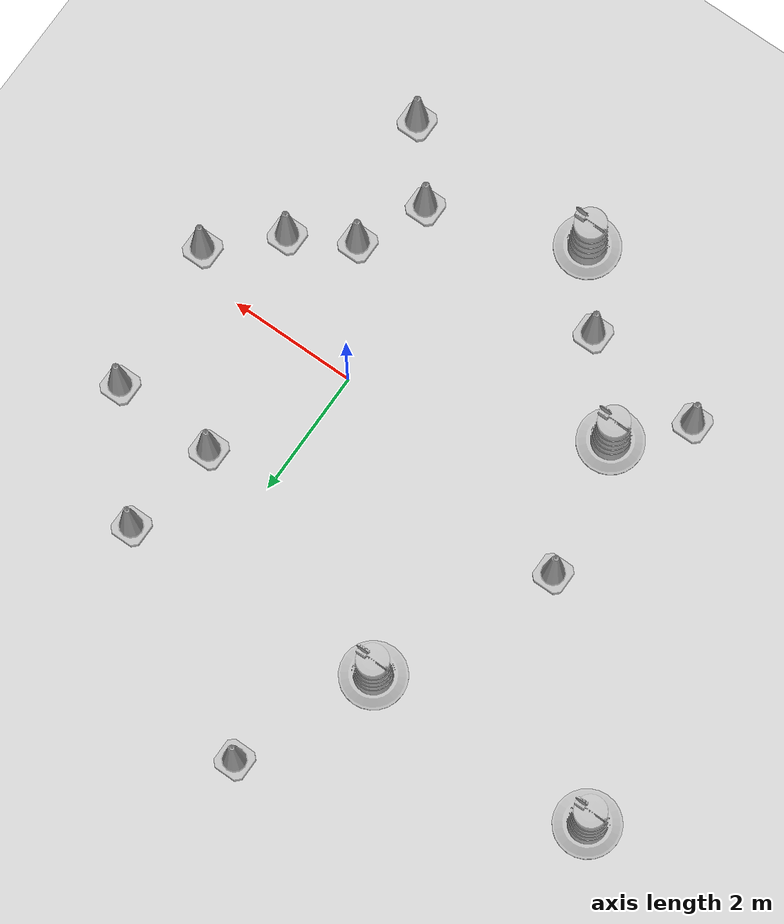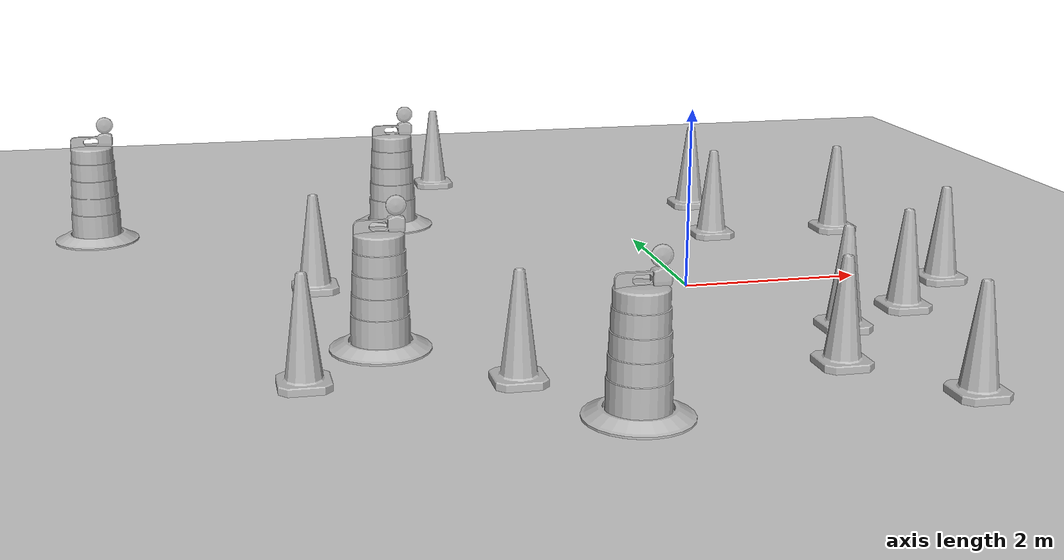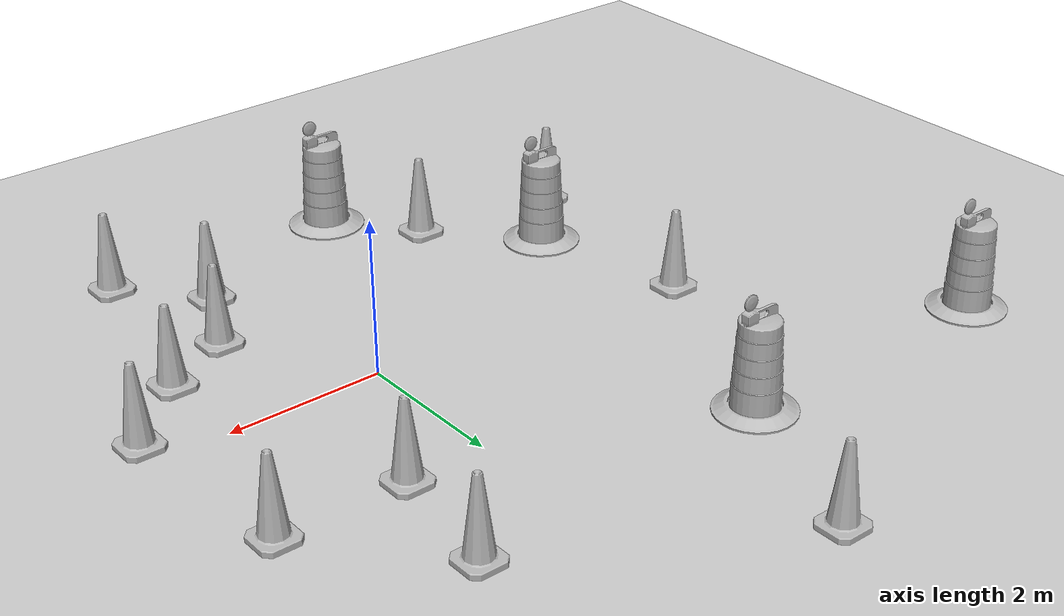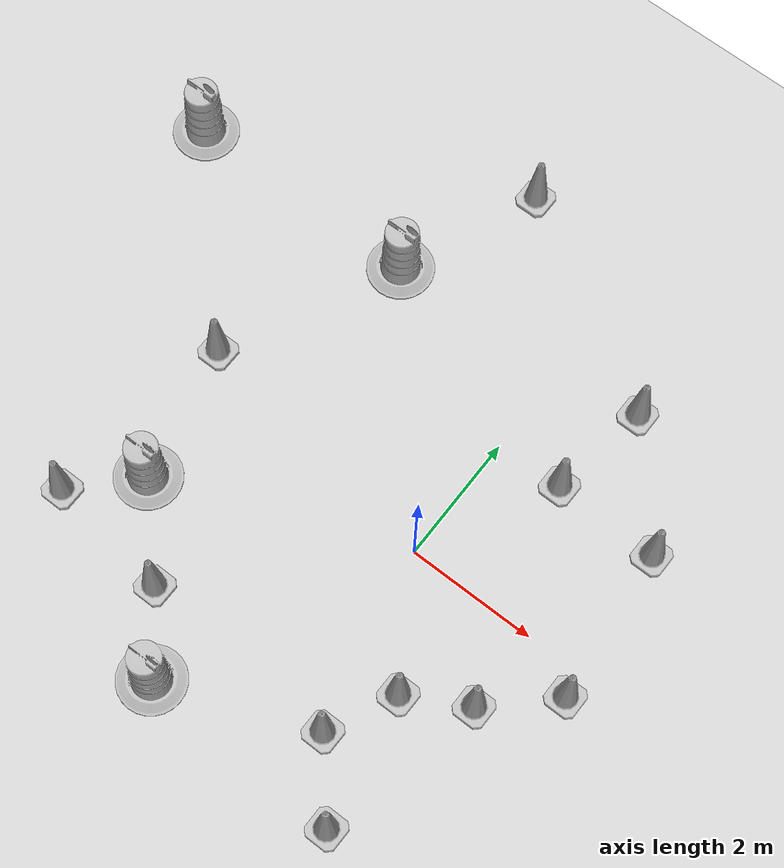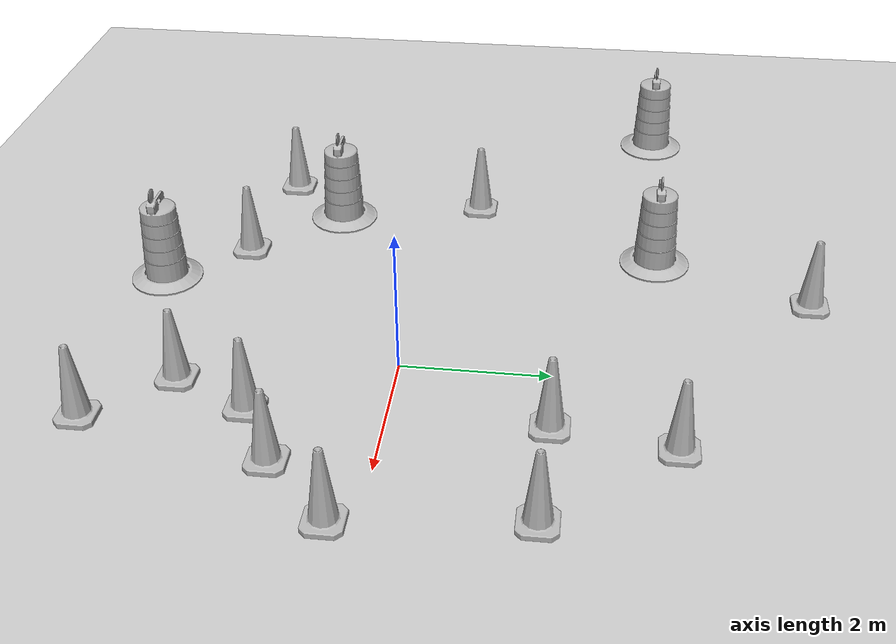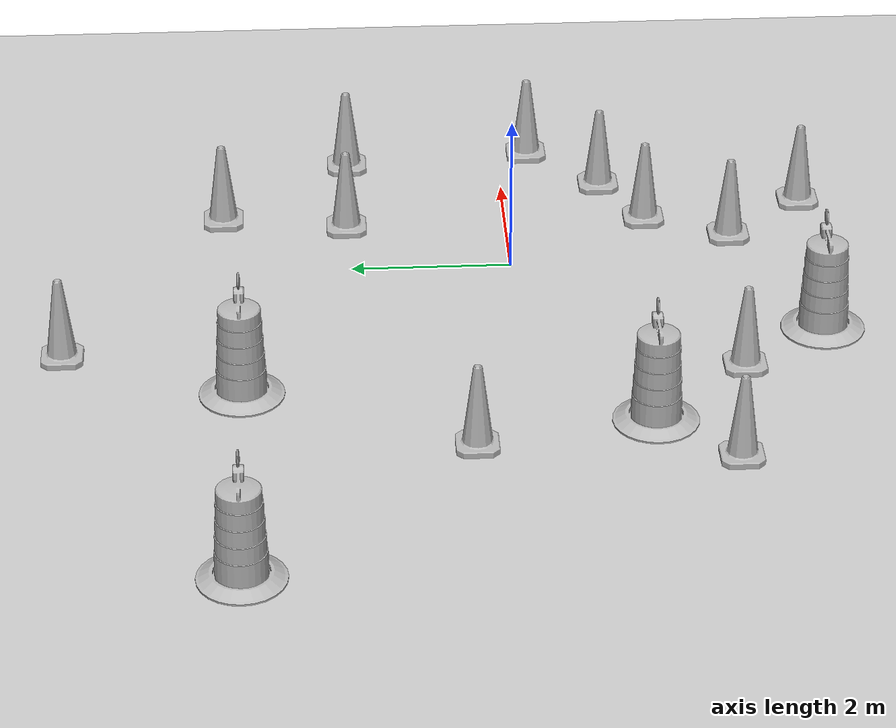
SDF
<sdf version="1.7">
 <world name="default">
  <light name="sun" type="directional">
   <pose>0 0 10 0 -0 0</pose>
   <diffuse>0.8 0.8 0.8 1</diffuse>
   <specular>0.2 0.2 0.2 1</specular>
   <attenuation>
    <range>1000</range>
    <constant>0.9</constant>
    <linear>0.01</linear>
    <quadratic>0.001</quadratic>
   </attenuation>
   <direction>-0.5 0.1 -0.9</direction>
   <spot><inner_angle>0</inner_angle><outer_angle>0</outer_angle><falloff>0</falloff></spot>
  </light>
  <model name="ground_plane">
   <static>1</static>
   <link name="link">
    <collision name="collision">
     <geometry><plane><normal>0 0 1</normal><size>100 100</size></plane></geometry>
     <surface><friction><ode><mu>100</mu><mu2>50</mu2></ode></friction></surface>
    </collision>
    <visual name="visual">
     <cast_shadows>0</cast_shadows>
     <geometry><plane><normal>0 0 1</normal><size>100 100</size></plane></geometry>
     <material>
      <script><uri>file://media/materials/scripts/gazebo.material</uri><name>Gazebo/Grey</name></script>
     </material>
    </visual>
   </link>
  </model>
  <gravity>0 0 -9.8</gravity>
  <magnetic_field>6e-06 2.3e-05 -4.2e-05</magnetic_field>
  <atmosphere type="adiabatic"/>
  <physics type="ode">
   <max_step_size>0.001</max_step_size>
   <real_time_factor>1</real_time_factor>
   <real_time_update_rate>1000</real_time_update_rate>
  </physics>
  <scene><ambient>0.4 0.4 0.4 1</ambient><background>0.7 0.7 0.7 1</background><shadows>1</shadows></scene>
  <audio><device>default</device></audio>
  <spherical_coordinates>
   <surface_model>EARTH_WGS84</surface_model>
   <latitude_deg>0</latitude_deg>
   <longitude_deg>0</longitude_deg>
   <elevation>0</elevation>
   <heading_deg>0</heading_deg>
  </spherical_coordinates>
  <model name="Construction Barrel">
   <link name="link">
    <inertial>
     <pose>0 0 0.4 0 -0 0</pose>
     <mass>500</mass>
     <inertia><ixx>51.2096</ixx><iyy>51.2096</iyy><izz>25</izz><ixy>0</ixy><ixz>0</ixz><iyz>0</iyz></inertia>
    </inertial>
    <collision name="collision">
     <geometry><mesh><uri>model://construction_barrel/meshes/construction_barrel.dae</uri></mesh></geometry>
    </collision>
    <visual name="visual">
     <geometry><mesh><uri>model://construction_barrel/meshes/construction_barrel.dae</uri></mesh></geometry>
    </visual>
   </link>
   <pose>-2.84595 3.37123 -2e-06 7e-06 -4e-06 -2.6e-05</pose>
  </model>
  <model name="Construction Barrel_0">
   <link name="link">
    <inertial>
     <pose>0 0 0.4 0 -0 0</pose>
     <mass>500</mass>
     <inertia><ixx>51.2096</ixx><iyy>51.2096</iyy><izz>25</izz><ixy>0</ixy><ixz>0</ixz><iyz>0</iyz></inertia>
    </inertial>
    <collision name="collision">
     <geometry><mesh><uri>model://construction_barrel/meshes/construction_barrel.dae</uri></mesh></geometry>
    </collision>
    <visual name="visual">
     <geometry><mesh><uri>model://construction_barrel/meshes/construction_barrel.dae</uri></mesh></geometry>
    </visual>
   </link>
   <pose>-3.66312 -1.44625 -2e-06 7e-06 -4e-06 -2.5e-05</pose>
  </model>
  <model name="Construction Cone">
   <link name="link">
    <collision name="collision">
     <geometry>
      <mesh><scale>10 10 10</scale><uri>model://construction_cone/meshes/construction_cone.dae</uri></mesh>
     </geometry>
    </collision>
    <visual name="visual">
     <geometry>
      <mesh><scale>10 10 10</scale><uri>model://construction_cone/meshes/construction_cone.dae</uri></mesh>
     </geometry>
    </visual>
    <inertial>
     <inertia><ixx>1</ixx><ixy>0</ixy><ixz>0</ixz><iyy>1</iyy><iyz>0</iyz><izz>1</izz></inertia>
     <mass>1</mass>
    </inertial>
   </link>
   <pose>1.0321 2.03764 -0 0 -0 0</pose>
  </model>
  <model name="Construction Barrel_clone">
   <link name="link">
    <inertial>
     <pose>0 0 0.4 0 -0 0</pose>
     <mass>500</mass>
     <inertia><ixx>51.2096</ixx><iyy>51.2096</iyy><izz>25</izz><ixy>0</ixy><ixz>0</ixz><iyz>0</iyz></inertia>
    </inertial>
    <collision name="collision">
     <geometry><mesh><uri>model://construction_barrel/meshes/construction_barrel.dae</uri></mesh></geometry>
    </collision>
    <visual name="visual">
     <geometry><mesh><uri>model://construction_barrel/meshes/construction_barrel.dae</uri></mesh></geometry>
    </visual>
   </link>
   <pose>-1.71229 -3.68298 -2e-06 7e-06 -4e-06 -2.4e-05</pose>
  </model>
  <model name="Construction Cone_clone">
   <link name="link">
    <collision name="collision">
     <geometry>
      <mesh><scale>10 10 10</scale><uri>model://construction_cone/meshes/construction_cone.dae</uri></mesh>
     </geometry>
    </collision>
    <visual name="visual">
     <geometry>
      <mesh><scale>10 10 10</scale><uri>model://construction_cone/meshes/construction_cone.dae</uri></mesh>
     </geometry>
    </visual>
    <inertial>
     <inertia><ixx>1</ixx><ixy>0</ixy><ixz>0</ixz><iyy>1</iyy><iyz>0</iyz><izz>1</izz></inertia>
     <mass>1</mass>
    </inertial>
   </link>
   <pose>0.588491 -2.8063 -0 0 -0 0</pose>
  </model>
  <model name="Construction Cone_clone_0">
   <link name="link">
    <collision name="collision">
     <geometry>
      <mesh><scale>10 10 10</scale><uri>model://construction_cone/meshes/construction_cone.dae</uri></mesh>
     </geometry>
    </collision>
    <visual name="visual">
     <geometry>
      <mesh><scale>10 10 10</scale><uri>model://construction_cone/meshes/construction_cone.dae</uri></mesh>
     </geometry>
    </visual>
    <inertial>
     <inertia><ixx>1</ixx><ixy>0</ixy><ixz>0</ixz><iyy>1</iyy><iyz>0</iyz><izz>1</izz></inertia>
     <mass>1</mass>
    </inertial>
   </link>
   <pose>1.07888 -1.76884 -8e-06 0 1e-06 0</pose>
  </model>
  <model name="Construction Cone_clone_1">
   <link name="link">
    <collision name="collision">
     <geometry>
      <mesh><scale>10 10 10</scale><uri>model://construction_cone/meshes/construction_cone.dae</uri></mesh>
     </geometry>
    </collision>
    <visual name="visual">
     <geometry>
      <mesh><scale>10 10 10</scale><uri>model://construction_cone/meshes/construction_cone.dae</uri></mesh>
     </geometry>
    </visual>
    <inertial>
     <inertia><ixx>1</ixx><ixy>0</ixy><ixz>0</ixz><iyy>1</iyy><iyz>0</iyz><izz>1</izz></inertia>
     <mass>1</mass>
    </inertial>
   </link>
   <pose>2.8964 -0.385932 -0 0 -1e-06 0</pose>
  </model>
  <model name="Construction Cone_clone_2">
   <link name="link">
    <collision name="collision">
     <geometry>
      <mesh><scale>10 10 10</scale><uri>model://construction_cone/meshes/construction_cone.dae</uri></mesh>
     </geometry>
    </collision>
    <visual name="visual">
     <geometry>
      <mesh><scale>10 10 10</scale><uri>model://construction_cone/meshes/construction_cone.dae</uri></mesh>
     </geometry>
    </visual>
    <inertial>
     <inertia><ixx>1</ixx><ixy>0</ixy><ixz>0</ixz><iyy>1</iyy><iyz>0</iyz><izz>1</izz></inertia>
     <mass>1</mass>
    </inertial>
   </link>
   <pose>-4.10915 0.663496 -0 0 -1e-06 0</pose>
  </model>
  <model name="Construction Cone_clone_3">
   <link name="link">
    <collision name="collision">
     <geometry>
      <mesh><scale>10 10 10</scale><uri>model://construction_cone/meshes/construction_cone.dae</uri></mesh>
     </geometry>
    </collision>
    <visual name="visual">
     <geometry>
      <mesh><scale>10 10 10</scale><uri>model://construction_cone/meshes/construction_cone.dae</uri></mesh>
     </geometry>
    </visual>
    <inertial>
     <inertia><ixx>1</ixx><ixy>0</ixy><ixz>0</ixz><iyy>1</iyy><iyz>0</iyz><izz>1</izz></inertia>
     <mass>1</mass>
    </inertial>
   </link>
   <pose>1.28016 3.60463 -1e-05 -1e-06 0 0</pose>
  </model>
  <model name="Construction Cone_clone_4">
   <link name="link">
    <collision name="collision">
     <geometry>
      <mesh><scale>10 10 10</scale><uri>model://construction_cone/meshes/construction_cone.dae</uri></mesh>
     </geometry>
    </collision>
    <visual name="visual">
     <geometry>
      <mesh><scale>10 10 10</scale><uri>model://construction_cone/meshes/construction_cone.dae</uri></mesh>
     </geometry>
    </visual>
    <inertial>
     <inertia><ixx>1</ixx><ixy>0</ixy><ixz>0</ixz><iyy>1</iyy><iyz>0</iyz><izz>1</izz></inertia>
     <mass>1</mass>
    </inertial>
   </link>
   <pose>-2.53912 -2.63356 -0 0 -0 0</pose>
  </model>
  <model name="Construction Cone_clone_5">
   <link name="link">
    <collision name="collision">
     <geometry>
      <mesh><scale>10 10 10</scale><uri>model://construction_cone/meshes/construction_cone.dae</uri></mesh>
     </geometry>
    </collision>
    <visual name="visual">
     <geometry>
      <mesh><scale>10 10 10</scale><uri>model://construction_cone/meshes/construction_cone.dae</uri></mesh>
     </geometry>
    </visual>
    <inertial>
     <inertia><ixx>1</ixx><ixy>0</ixy><ixz>0</ixz><iyy>1</iyy><iyz>0</iyz><izz>1</izz></inertia>
     <mass>1</mass>
    </inertial>
   </link>
   <pose>2.66001 1.99298 -0 0 -1e-06 0</pose>
  </model>
  <model name="Construction Cone_clone_6">
   <link name="link">
    <collision name="collision">
     <geometry>
      <mesh><scale>10 10 10</scale><uri>model://construction_cone/meshes/construction_cone.dae</uri></mesh>
     </geometry>
    </collision>
    <visual name="visual">
     <geometry>
      <mesh><scale>10 10 10</scale><uri>model://construction_cone/meshes/construction_cone.dae</uri></mesh>
     </geometry>
    </visual>
    <inertial>
     <inertia><ixx>1</ixx><ixy>0</ixy><ixz>0</ixz><iyy>1</iyy><iyz>0</iyz><izz>1</izz></inertia>
     <mass>1</mass>
    </inertial>
   </link>
   <pose>-1.94252 5.52102 -0 0 -1e-06 0</pose>
  </model>
  <model name="Construction Cone_clone_7">
   <link name="link">
    <collision name="collision">
     <geometry>
      <mesh><scale>10 10 10</scale><uri>model://construction_cone/meshes/construction_cone.dae</uri></mesh>
     </geometry>
    </collision>
    <visual name="visual">
     <geometry>
      <mesh><scale>10 10 10</scale><uri>model://construction_cone/meshes/construction_cone.dae</uri></mesh>
     </geometry>
    </visual>
    <inertial>
     <inertia><ixx>1</ixx><ixy>0</ixy><ixz>0</ixz><iyy>1</iyy><iyz>0</iyz><izz>1</izz></inertia>
     <mass>1</mass>
    </inertial>
   </link>
   <pose>1.44588 -3.80858 -1e-05 -1e-06 1e-06 0</pose>
  </model>
  <model name="Construction Cone_clone_8">
   <link name="link">
    <collision name="collision">
     <geometry>
      <mesh><scale>10 10 10</scale><uri>model://construction_cone/meshes/construction_cone.dae</uri></mesh>
     </geometry>
    </collision>
    <visual name="visual">
     <geometry>
      <mesh><scale>10 10 10</scale><uri>model://construction_cone/meshes/construction_cone.dae</uri></mesh>
     </geometry>
    </visual>
    <inertial>
     <inertia><ixx>1</ixx><ixy>0</ixy><ixz>0</ixz><iyy>1</iyy><iyz>0</iyz><izz>1</izz></inertia>
     <mass>1</mass>
    </inertial>
   </link>
   <pose>1.99739 -1.26766 -0 0 -1e-06 0</pose>
  </model>
  <model name="Construction Cone_clone_9">
   <link name="link">
    <collision name="collision">
     <geometry>
      <mesh><scale>10 10 10</scale><uri>model://construction_cone/meshes/construction_cone.dae</uri></mesh>
     </geometry>
    </collision>
    <visual name="visual">
     <geometry>
      <mesh><scale>10 10 10</scale><uri>model://construction_cone/meshes/construction_cone.dae</uri></mesh>
     </geometry>
    </visual>
    <inertial>
     <inertia><ixx>1</ixx><ixy>0</ixy><ixz>0</ixz><iyy>1</iyy><iyz>0</iyz><izz>1</izz></inertia>
     <mass>1</mass>
    </inertial>
   </link>
   <pose>-4.49327 -2.35045 -0 0 -1e-06 0</pose>
  </model>
  <model name="Construction Barrel_clone_0">
   <link name="link">
    <inertial>
     <pose>0 0 0.4 0 -0 0</pose>
     <mass>500</mass>
     <inertia><ixx>51.2096</ixx><iyy>51.2096</iyy><izz>25</izz><ixy>0</ixy><ixz>0</ixz><iyz>0</iyz></inertia>
    </inertial>
    <collision name="collision">
     <geometry><mesh><uri>model://construction_barrel/meshes/construction_barrel.dae</uri></mesh></geometry>
    </collision>
    <visual name="visual">
     <geometry><mesh><uri>model://construction_barrel/meshes/construction_barrel.dae</uri></mesh></geometry>
    </visual>
   </link>
   <pose>-6.57803 3.3708 -1e-06 1e-06 -9e-06 -2.6e-05</pose>
  </model>
 </world>
</sdf>
